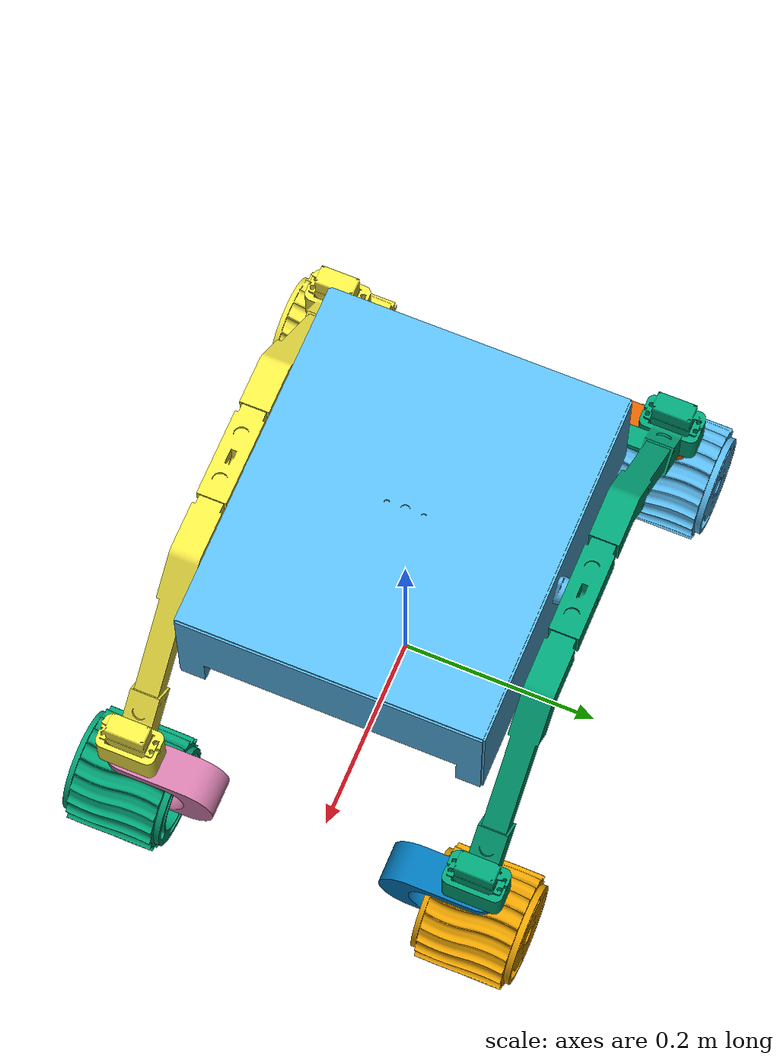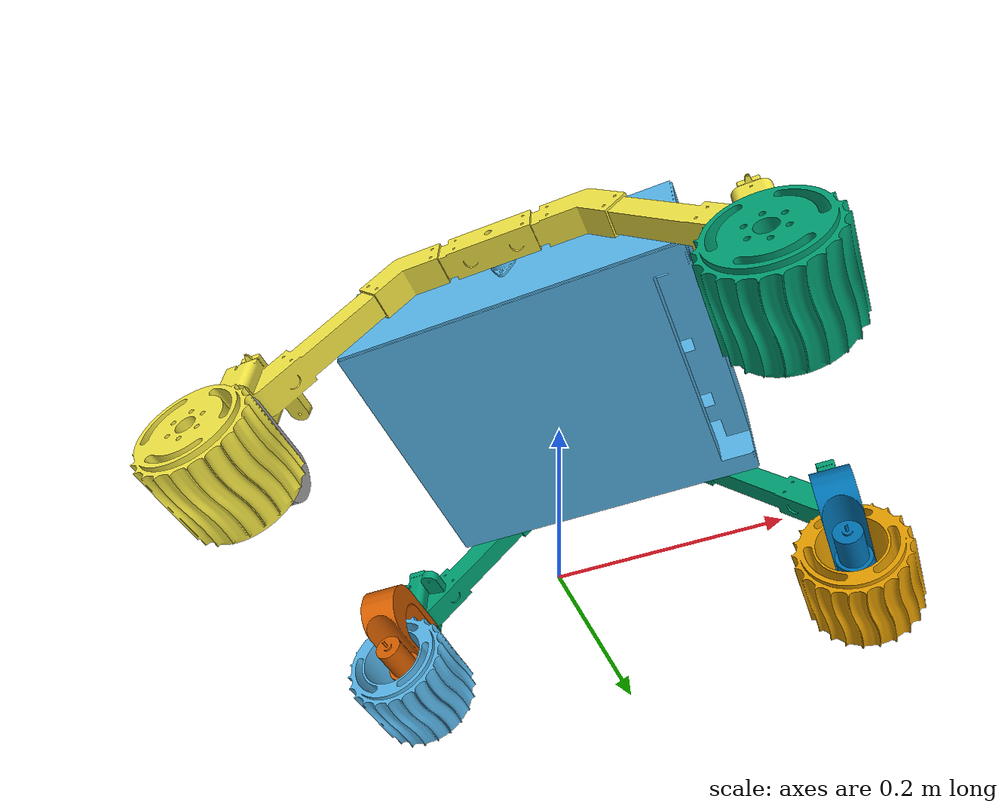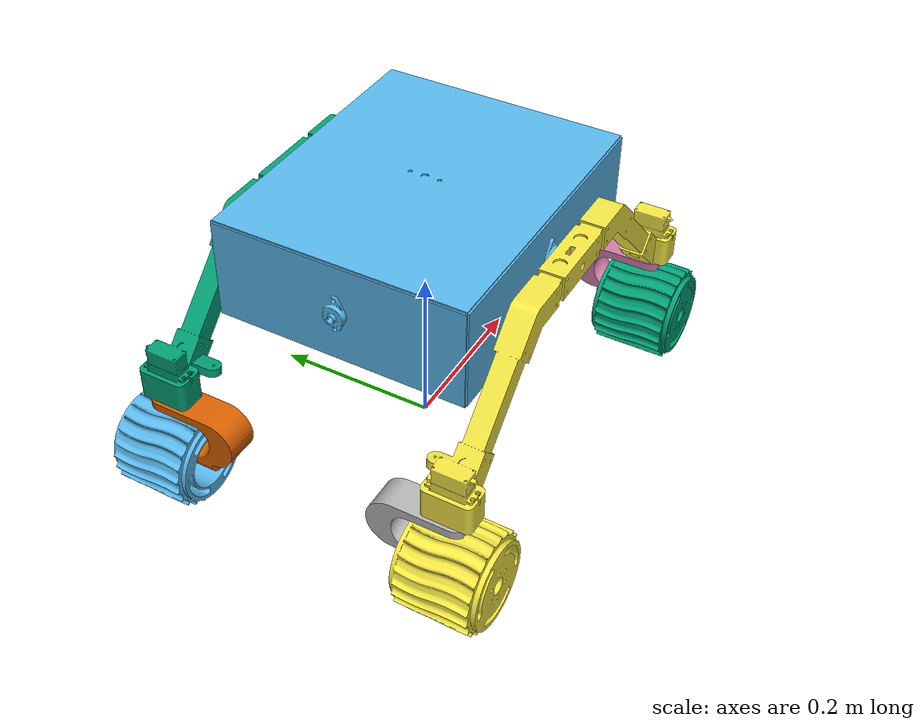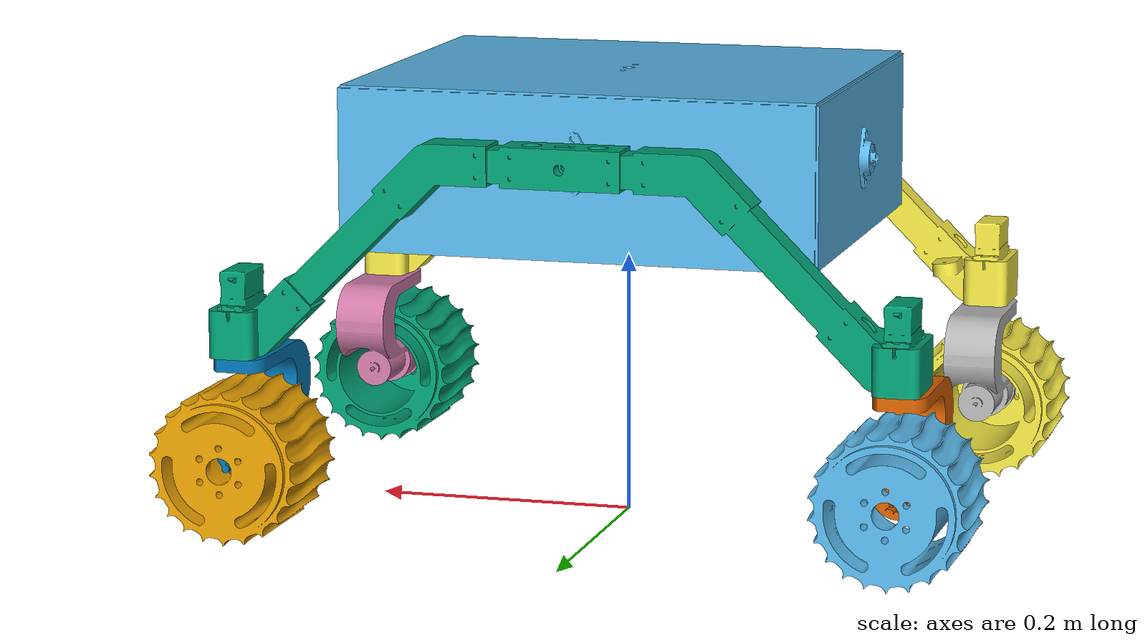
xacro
<?xml version="1.0"?>

<robot xmlns:xacro="https://www.ros.org/wiki/xacro">

    <!-- For RViz -->
    <xacro:property name="meshes_address" value="package://anveshika_description/meshes/rover/" />

    <!-- For Gazebo -->

    <xacro:property name="inertial_multipier" value="20" />

    <link name="base_footprint"/>

    <joint name="base_joint" type = "fixed">
        <parent link="base_footprint"/>
        <child link="base_link"/>

        <origin xyz="0 0 0.235" rpy="0 0 0"/>
    </joint>

    <link name = "base_link">
        <visual>
            <geometry>
                <mesh filename="${meshes_address}box.stl"
                       scale="0.001 0.001 0.001" />
            </geometry>

            <origin xyz = "0 0 0" rpy = "0 0 0"/>
        </visual>
        <collision>
            <geometry>
                <box size="0.36 0.30 0.12" />
            </geometry>

            <origin xyz = "0 0 0.045" rpy = "0 0 0"/>
        </collision>

        <inertial>
            <origin xyz="0 0 0" rpy="0 0 0"/>
            <mass value="4.0"/>
            <inertia ixx="${inertial_multipier*0.05835}" ixy = "0" ixz = "${inertial_multipier*-0.0008805}"
                    iyy="${inertial_multipier*0.06894}" iyz = "0"
                        izz="${inertial_multipier*0.09218}"/>
        </inertial>
    </link>

    <link name = "left_bogie">
        <visual>
            <geometry>
                <mesh filename="${meshes_address}left_bogie.stl"
                       scale="0.001 0.001 0.001" />
            </geometry>

            <origin xyz = "0 0 0" rpy = "0 0 ${pi}"/>
        </visual>

        <collision>
            <geometry>
                <mesh filename="${meshes_address}collision_bogie.stl"
                       scale="0.001 0.001 0.001" />
            </geometry>

            <origin xyz = "0 -0.015 0" rpy = "0 0 0"/>
        </collision>

        <inertial>
            <origin xyz="0 0 0" rpy="0 0 ${pi}"/>
            <mass value="1.0"/>
            <inertia ixx="${inertial_multipier*0.008645}" ixy = "0" ixz = "${inertial_multipier*0.0001546}"
                    iyy="${inertial_multipier*0.05017}" iyz = "${inertial_multipier*0.001152}"
                    izz="${inertial_multipier*0.04221}"/>
        </inertial>
    </link>

    <joint name="base_left_bogie_joint" type="revolute">
        <parent link="base_link"/>
        <child link="left_bogie"/>

        <origin xyz="0 0.190 0.06" rpy="0 0 0"/>

        <axis xyz="0 1 0"/>
        <limit lower="${-pi/2}" upper="${pi/2}" effort="100" velocity="100" />
    </joint>

    <link name = "right_bogie">
        <visual>
            <geometry>
                <mesh filename="${meshes_address}right_bogie.stl"
                       scale="0.001 0.001 0.001" />
            </geometry>

            <origin xyz = "0 0 0" rpy = "0 0 ${pi}"/>
        </visual>

        <collision>
            <geometry>
                <mesh filename="${meshes_address}collision_bogie.stl"
                       scale="0.001 0.001 0.001" />
            </geometry>

            <origin xyz = "0 0.015 0" rpy = "0 0 0"/>
        </collision>

        <inertial>
            <origin xyz="0 0 0" rpy="0 0 ${pi}"/>
            <mass value="1.0"/>
            <inertia ixx="${inertial_multipier*0.008645}" ixy = "0" ixz = "${inertial_multipier*0.0001546}"
                    iyy="${inertial_multipier*0.05017}" iyz = "${inertial_multipier*-0.001152}"
                    izz="${inertial_multipier*0.04221}"/>
        </inertial>
    </link>

    <joint name="base_right_bogie_joint" type="revolute">
        <parent link="base_link"/>
        <child link="right_bogie"/>

        <origin xyz="0 -0.190 0.06" rpy="0 0 0"/>

        <axis xyz="0 1 0"/>

        <limit lower="${-pi/2}" upper="${pi/2}" effort="100" velocity="100" />

        <mimic joint="base_left_bogie_joint" multiplier="-1"/>

    </joint>

    <xacro:macro name="motor_mount_link" params="prefix x y z r p ya">
        <link name="${prefix}_motor_mount">
            <visual>
                <geometry>
                    <mesh filename="${meshes_address}drive_motor_mount.stl"
                           scale="0.001 0.001 0.001" />
                </geometry>

                <origin xyz="${x} ${y} ${z}" rpy="${r} ${p} ${ya}"/>

            </visual>

            <collision>
                <geometry>
                    <mesh filename="${meshes_address}collision_motor_mount.stl"
                           scale="0.001 0.001 0.001" />
                </geometry>

                <origin xyz = "${x} ${y} ${z}" rpy = "${r} ${p} ${ya}"/>
            </collision>

            <inertial>
                <origin xyz="${x} ${y} ${z}" rpy="${r} ${p} ${ya}"/>
                <mass value="0.3"/>
                <inertia ixx="${inertial_multipier*0.0003244}" ixy = "0" ixz = "${inertial_multipier*-0.0002914}"
                        iyy="${inertial_multipier*0.001012}" iyz = "0"
                        izz="${inertial_multipier*0.0007519}"/>
            </inertial>
        </link>
    </xacro:macro>

    <xacro:motor_mount_link prefix="front_left"
                            x="0" y="0" z="0"
                            r="0" p="0" ya="${-pi/2}" />

    <joint name="left_bogie_front_left_motor_mount_joint" type="revolute">
        <parent link="left_bogie"/>
        <child link="front_left_motor_mount"/>

        <origin xyz="0.25 -0.005 -0.223" rpy="0 0 0"/>

        <axis xyz="0 0 1"/>
        <limit lower="${-pi/2}" upper="${pi/2}" effort="100" velocity="100" />

        <command_interface name="position">
            <param name="min">-${pi/2}</param>
            <param name="max">${pi/2}</param>
        </command_interface>
        <state_interface name="position"/>
        <state_interface name="velocity"/>
        <state_interface name="acceleration"/>
    </joint>

    <xacro:motor_mount_link prefix="back_left"
                            x="0" y="0" z="0"
                            r="0" p="0" ya="${-pi/2}" />

    <joint name="left_bogie_back_left_motor_mount_joint" type="revolute">
        <parent link="left_bogie"/>
        <child link="back_left_motor_mount"/>

        <origin xyz="-0.25 -0.005 -0.223" rpy="0 0 0"/>

        <axis xyz="0 0 1"/>
        <limit lower="${-pi/2}" upper="${pi/2}" effort="100" velocity="100" />

        <command_interface name="position">
            <param name="min">-${pi/2}</param>
            <param name="max">${pi/2}</param>
        </command_interface>
        <state_interface name="position"/>
        <state_interface name="velocity"/>
        <state_interface name="acceleration"/>
    </joint>

    <xacro:motor_mount_link prefix="front_right"
                            x="0" y="0" z="0"
                            r="0" p="0" ya="${pi/2}" />

    <joint name="right_bogie_front_right_motor_mount_joint" type="revolute">
        <parent link="right_bogie"/>
        <child link="front_right_motor_mount"/>

        <origin xyz="0.25 0.005 -0.223" rpy="0 0 0"/>

        <axis xyz="0 0 1"/>
        <limit lower="${-pi/2}" upper="${pi/2}" effort="100" velocity="100" />

        <command_interface name="position">
            <param name="min">-${pi/2}</param>
            <param name="max">${pi/2}</param>
        </command_interface>
        <state_interface name="position"/>
        <state_interface name="velocity"/>
        <state_interface name="acceleration"/>
    </joint>

    <xacro:motor_mount_link prefix="back_right"
                            x="0" y="0" z="0"
                            r="0" p="0" ya="${pi/2}" />

    <joint name="right_bogie_back_right_motor_mount_joint" type="revolute">
        <parent link="right_bogie"/>
        <child link="back_right_motor_mount"/>

        <origin xyz="-0.25 0.005 -0.223" rpy="0 0 0"/>

        <axis xyz="0 0 1"/>
        <limit lower="${-pi/2}" upper="${pi/2}" effort="100" velocity="100" />

        <command_interface name="position">
            <param name="min">-${pi/2}</param>
            <param name="max">${pi/2}</param>
        </command_interface>
        <state_interface name="position"/>
        <state_interface name="velocity"/>
        <state_interface name="acceleration"/>
    </joint>

    <xacro:macro name="wheel_link" params="prefix x y z r p ya">
        <link name="${prefix}_wheel">
            <visual>
                <geometry>
                    <mesh filename="${meshes_address}wheel.stl"
                           scale="0.001 0.001 0.001" />
                </geometry>

                <origin xyz="${x} ${y} ${z}" rpy="${r} ${p} ${ya}"/>

            </visual>

            <collision>
                <geometry>
                    <cylinder radius="0.06" length="0.1"/>
                </geometry>
                <xacro:if value="${r == pi/2}">
                    <origin xyz = "${x} ${y - 0.05} ${z}" rpy = "${r} ${p} ${ya}"/>
                </xacro:if>

                <xacro:unless value="${r == pi/2}">
                    <origin xyz = "${x} ${y + 0.05} ${z}" rpy = "${r} ${p} ${ya}"/>
                </xacro:unless>
            </collision>

            <inertial>
                <origin xyz="${x} ${y} ${z}" rpy="${r} ${p} ${ya}"/>
                <mass value="0.45"/>
                <inertia ixx="${inertial_multipier*0.001735}" ixy = "0" ixz = "0"
                        iyy="${inertial_multipier*0.001735}" iyz = "0"
                        izz="${inertial_multipier*0.0008776}"/>
            </inertial>
        </link>
    </xacro:macro>

    <xacro:wheel_link prefix="front_left"
                            x="0" y="0" z="0"
                            r="${pi/2}" p="0" ya="0" />

    <joint name="front_left_wheel_joint" type="continuous">
        <parent link="front_left_motor_mount"/>
        <child link="front_left_wheel"/>

        <origin xyz="0 0.045 -0.006" rpy="0 0 0"/>

        <axis xyz="0 1 0"/>

        <command_interface name="velocity">
            <param name="min">-1</param>
            <param name="max">1</param>
        </command_interface>
        <state_interface name="position"/>
        <state_interface name="velocity"/>
        <state_interface name="acceleration"/>
    </joint>

    <xacro:wheel_link prefix="back_left"
                            x="0" y="0" z="0"
                            r="${pi/2}" p="0" ya="0" />

    <joint name="back_left_wheel_joint" type="continuous">
        <parent link="back_left_motor_mount"/>
        <child link="back_left_wheel"/>

        <origin xyz="0 0.045 -0.006" rpy="0 0 0"/>

        <axis xyz="0 1 0"/>

        <command_interface name="velocity">
            <param name="min">-1</param>
            <param name="max">1</param>
        </command_interface>
        <state_interface name="position"/>
        <state_interface name="velocity"/>
        <state_interface name="acceleration"/>
    </joint>

    <xacro:wheel_link prefix="front_right"
                            x="0" y="0" z="0"
                            r="${-pi/2}" p="0" ya="0" />

    <joint name="front_right_wheel_joint" type="continuous">
        <parent link="front_right_motor_mount"/>
        <child link="front_right_wheel"/>

        <origin xyz="0 -0.045 -0.006" rpy="0 0 0"/>

        <axis xyz="0 1 0"/>

        <command_interface name="velocity">
            <param name="min">-1</param>
            <param name="max">1</param>
        </command_interface>
        <state_interface name="position"/>
        <state_interface name="velocity"/>
        <state_interface name="acceleration"/>
    </joint>

    <xacro:wheel_link prefix="back_right"
                            x="0" y="0" z="0"
                            r="${-pi/2}" p="0" ya="0" />

    <joint name="back_right_wheel_joint" type="continuous">
        <parent link="back_right_motor_mount"/>
        <child link="back_right_wheel"/>

        <origin xyz="0 -0.045 -0.006" rpy="0 0 0"/>

        <axis xyz="0 1 0"/>

        <command_interface name="velocity">
            <param name="min">-1</param>
            <param name="max">1</param>
        </command_interface>
        <state_interface name="position"/>
        <state_interface name="velocity"/>
        <state_interface name="acceleration"/>
    </joint>

</robot>
